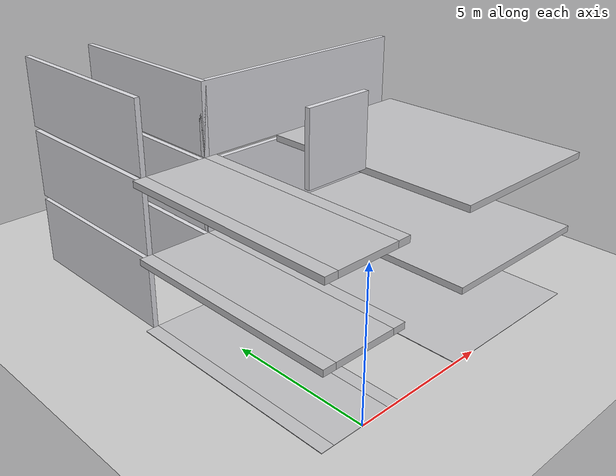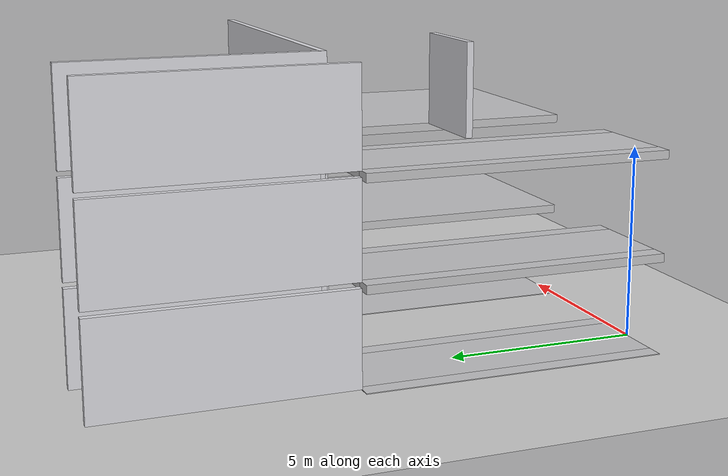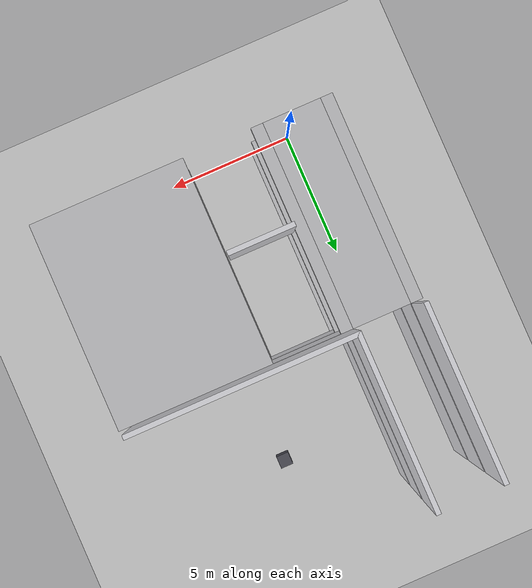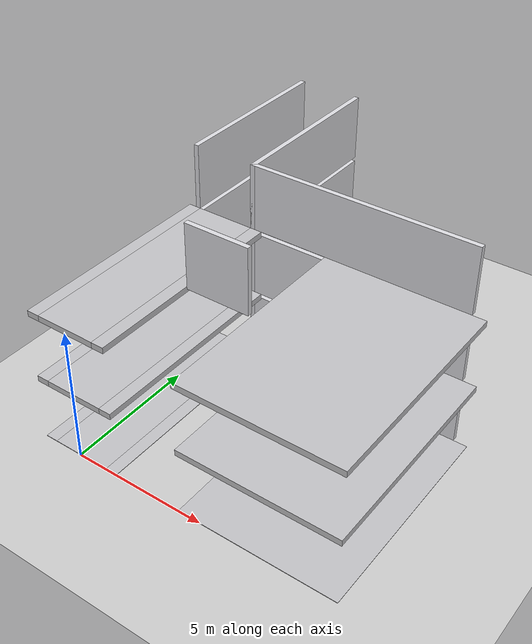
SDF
<sdf version="1.7">
 <world name="generated_world">
  <include><uri>model://sun</uri></include>
  <include><uri>model://ground_plane</uri></include>
  <model name="generated_building">
   <static>true</static>
   <link name="slab_floor_0_2">
    <pose>-1.3300 3.9250 -0.1100 0.0000 0.0000 0.0000</pose>
    <collision name="slab_floor_0_2_collision">
     <geometry><box><size>0.4600 7.8500 0.2200</size></box></geometry>
    </collision>
    <visual name="slab_floor_0_2_visual">
     <geometry><box><size>0.4600 7.8500 0.2200</size></box></geometry>
     <material><ambient>0.76 0.76 0.77 1</ambient><diffuse>0.76 0.76 0.77 1</diffuse></material>
    </visual>
    <gravity>false</gravity>
   </link>
   <link name="slab_floor_0_3">
    <pose>0.0000 3.9250 -0.1100 0.0000 0.0000 0.0000</pose>
    <collision name="slab_floor_0_3_collision">
     <geometry><box><size>2.2000 7.8500 0.2200</size></box></geometry>
    </collision>
    <visual name="slab_floor_0_3_visual">
     <geometry><box><size>2.2000 7.8500 0.2200</size></box></geometry>
     <material><ambient>0.76 0.76 0.77 1</ambient><diffuse>0.76 0.76 0.77 1</diffuse></material>
    </visual>
    <gravity>false</gravity>
   </link>
   <link name="slab_floor_0_4">
    <pose>1.3300 3.9250 -0.1100 0.0000 0.0000 0.0000</pose>
    <collision name="slab_floor_0_4_collision">
     <geometry><box><size>0.4600 7.8500 0.2200</size></box></geometry>
    </collision>
    <visual name="slab_floor_0_4_visual">
     <geometry><box><size>0.4600 7.8500 0.2200</size></box></geometry>
     <material><ambient>0.76 0.76 0.77 1</ambient><diffuse>0.76 0.76 0.77 1</diffuse></material>
    </visual>
    <gravity>false</gravity>
   </link>
   <link name="slab_floor_0_5">
    <pose>7.0700 3.9250 -0.1100 0.0000 0.0000 0.0000</pose>
    <collision name="slab_floor_0_5_collision">
     <geometry><box><size>5.8600 7.8500 0.2200</size></box></geometry>
    </collision>
    <visual name="slab_floor_0_5_visual">
     <geometry><box><size>5.8600 7.8500 0.2200</size></box></geometry>
     <material><ambient>0.76 0.76 0.77 1</ambient><diffuse>0.76 0.76 0.77 1</diffuse></material>
    </visual>
    <gravity>false</gravity>
   </link>
   <link name="floor_0_room_0_corridor_wall_lower">
    <pose>-1.1900 11.0575 1.2250 0.0000 0.0000 0.0000</pose>
    <collision name="floor_0_room_0_corridor_wall_lower_collision">
     <geometry><box><size>0.1800 6.4150 2.4500</size></box></geometry>
    </collision>
    <visual name="floor_0_room_0_corridor_wall_lower_visual">
     <geometry><box><size>0.1800 6.4150 2.4500</size></box></geometry>
     <material><ambient>0.86 0.86 0.88 1</ambient><diffuse>0.86 0.86 0.88 1</diffuse></material>
    </visual>
    <gravity>false</gravity>
   </link>
   <link name="floor_0_room_1_corridor_wall_lower">
    <pose>1.1900 11.0575 1.2250 0.0000 0.0000 0.0000</pose>
    <collision name="floor_0_room_1_corridor_wall_lower_collision">
     <geometry><box><size>0.1800 6.4150 2.4500</size></box></geometry>
    </collision>
    <visual name="floor_0_room_1_corridor_wall_lower_visual">
     <geometry><box><size>0.1800 6.4150 2.4500</size></box></geometry>
     <material><ambient>0.86 0.86 0.88 1</ambient><diffuse>0.86 0.86 0.88 1</diffuse></material>
    </visual>
    <gravity>false</gravity>
   </link>
   <link name="floor_0_room_1_south_wall">
    <pose>5.3000 7.9400 1.2250 0.0000 0.0000 0.0000</pose>
    <collision name="floor_0_room_1_south_wall_collision">
     <geometry><box><size>8.4000 0.1800 2.4500</size></box></geometry>
    </collision>
    <visual name="floor_0_room_1_south_wall_visual">
     <geometry><box><size>8.4000 0.1800 2.4500</size></box></geometry>
     <material><ambient>0.86 0.86 0.88 1</ambient><diffuse>0.86 0.86 0.88 1</diffuse></material>
    </visual>
    <gravity>false</gravity>
   </link>
   <link name="floor_0_room_1_chair_south">
    <pose>5.3000 11.8075 0.2800 0.0000 0.0000 0.0000</pose>
    <collision name="floor_0_room_1_chair_south_collision">
     <geometry><box><size>0.5000 0.5000 0.5500</size></box></geometry>
    </collision>
    <visual name="floor_0_room_1_chair_south_visual">
     <geometry><box><size>0.5000 0.5000 0.5500</size></box></geometry>
     <material><ambient>0.30 0.30 0.34 1</ambient><diffuse>0.30 0.30 0.34 1</diffuse></material>
    </visual>
    <gravity>false</gravity>
   </link>
   <link name="slab_floor_1_2">
    <pose>-1.3300 3.9250 2.4900 0.0000 0.0000 0.0000</pose>
    <collision name="slab_floor_1_2_collision">
     <geometry><box><size>0.4600 7.8500 0.2200</size></box></geometry>
    </collision>
    <visual name="slab_floor_1_2_visual">
     <geometry><box><size>0.4600 7.8500 0.2200</size></box></geometry>
     <material><ambient>0.76 0.76 0.77 1</ambient><diffuse>0.76 0.76 0.77 1</diffuse></material>
    </visual>
    <gravity>false</gravity>
   </link>
   <link name="slab_floor_1_3">
    <pose>0.0000 3.9250 2.4900 0.0000 0.0000 0.0000</pose>
    <collision name="slab_floor_1_3_collision">
     <geometry><box><size>2.2000 7.8500 0.2200</size></box></geometry>
    </collision>
    <visual name="slab_floor_1_3_visual">
     <geometry><box><size>2.2000 7.8500 0.2200</size></box></geometry>
     <material><ambient>0.76 0.76 0.77 1</ambient><diffuse>0.76 0.76 0.77 1</diffuse></material>
    </visual>
    <gravity>false</gravity>
   </link>
   <link name="slab_floor_1_4">
    <pose>1.3300 3.9250 2.4900 0.0000 0.0000 0.0000</pose>
    <collision name="slab_floor_1_4_collision">
     <geometry><box><size>0.4600 7.8500 0.2200</size></box></geometry>
    </collision>
    <visual name="slab_floor_1_4_visual">
     <geometry><box><size>0.4600 7.8500 0.2200</size></box></geometry>
     <material><ambient>0.76 0.76 0.77 1</ambient><diffuse>0.76 0.76 0.77 1</diffuse></material>
    </visual>
    <gravity>false</gravity>
   </link>
   <link name="slab_floor_1_5">
    <pose>7.0700 3.9250 2.4900 0.0000 0.0000 0.0000</pose>
    <collision name="slab_floor_1_5_collision">
     <geometry><box><size>5.8600 7.8500 0.2200</size></box></geometry>
    </collision>
    <visual name="slab_floor_1_5_visual">
     <geometry><box><size>5.8600 7.8500 0.2200</size></box></geometry>
     <material><ambient>0.76 0.76 0.77 1</ambient><diffuse>0.76 0.76 0.77 1</diffuse></material>
    </visual>
    <gravity>false</gravity>
   </link>
   <link name="floor_1_room_0_corridor_wall_lower">
    <pose>-1.1900 11.0575 3.8250 0.0000 0.0000 0.0000</pose>
    <collision name="floor_1_room_0_corridor_wall_lower_collision">
     <geometry><box><size>0.1800 6.4150 2.4500</size></box></geometry>
    </collision>
    <visual name="floor_1_room_0_corridor_wall_lower_visual">
     <geometry><box><size>0.1800 6.4150 2.4500</size></box></geometry>
     <material><ambient>0.86 0.86 0.88 1</ambient><diffuse>0.86 0.86 0.88 1</diffuse></material>
    </visual>
    <gravity>false</gravity>
   </link>
   <link name="floor_1_room_1_corridor_wall_lower">
    <pose>1.1900 11.0575 3.8250 0.0000 0.0000 0.0000</pose>
    <collision name="floor_1_room_1_corridor_wall_lower_collision">
     <geometry><box><size>0.1800 6.4150 2.4500</size></box></geometry>
    </collision>
    <visual name="floor_1_room_1_corridor_wall_lower_visual">
     <geometry><box><size>0.1800 6.4150 2.4500</size></box></geometry>
     <material><ambient>0.86 0.86 0.88 1</ambient><diffuse>0.86 0.86 0.88 1</diffuse></material>
    </visual>
    <gravity>false</gravity>
   </link>
   <link name="floor_1_room_1_south_wall">
    <pose>5.3000 7.9400 3.8250 0.0000 0.0000 0.0000</pose>
    <collision name="floor_1_room_1_south_wall_collision">
     <geometry><box><size>8.4000 0.1800 2.4500</size></box></geometry>
    </collision>
    <visual name="floor_1_room_1_south_wall_visual">
     <geometry><box><size>8.4000 0.1800 2.4500</size></box></geometry>
     <material><ambient>0.86 0.86 0.88 1</ambient><diffuse>0.86 0.86 0.88 1</diffuse></material>
    </visual>
    <gravity>false</gravity>
   </link>
   <link name="slab_floor_2_2">
    <pose>-1.3300 3.9250 5.0900 0.0000 0.0000 0.0000</pose>
    <collision name="slab_floor_2_2_collision">
     <geometry><box><size>0.4600 7.8500 0.2200</size></box></geometry>
    </collision>
    <visual name="slab_floor_2_2_visual">
     <geometry><box><size>0.4600 7.8500 0.2200</size></box></geometry>
     <material><ambient>0.76 0.76 0.77 1</ambient><diffuse>0.76 0.76 0.77 1</diffuse></material>
    </visual>
    <gravity>false</gravity>
   </link>
   <link name="slab_floor_2_3">
    <pose>0.0000 3.9250 5.0900 0.0000 0.0000 0.0000</pose>
    <collision name="slab_floor_2_3_collision">
     <geometry><box><size>2.2000 7.8500 0.2200</size></box></geometry>
    </collision>
    <visual name="slab_floor_2_3_visual">
     <geometry><box><size>2.2000 7.8500 0.2200</size></box></geometry>
     <material><ambient>0.76 0.76 0.77 1</ambient><diffuse>0.76 0.76 0.77 1</diffuse></material>
    </visual>
    <gravity>false</gravity>
   </link>
   <link name="slab_floor_2_4">
    <pose>1.3300 3.9250 5.0900 0.0000 0.0000 0.0000</pose>
    <collision name="slab_floor_2_4_collision">
     <geometry><box><size>0.4600 7.8500 0.2200</size></box></geometry>
    </collision>
    <visual name="slab_floor_2_4_visual">
     <geometry><box><size>0.4600 7.8500 0.2200</size></box></geometry>
     <material><ambient>0.76 0.76 0.77 1</ambient><diffuse>0.76 0.76 0.77 1</diffuse></material>
    </visual>
    <gravity>false</gravity>
   </link>
   <link name="slab_floor_2_5">
    <pose>7.0700 3.9250 5.0900 0.0000 0.0000 0.0000</pose>
    <collision name="slab_floor_2_5_collision">
     <geometry><box><size>5.8600 7.8500 0.2200</size></box></geometry>
    </collision>
    <visual name="slab_floor_2_5_visual">
     <geometry><box><size>5.8600 7.8500 0.2200</size></box></geometry>
     <material><ambient>0.76 0.76 0.77 1</ambient><diffuse>0.76 0.76 0.77 1</diffuse></material>
    </visual>
    <gravity>false</gravity>
   </link>
   <link name="floor_2_room_0_corridor_wall_lower">
    <pose>-1.1900 11.0575 6.4250 0.0000 0.0000 0.0000</pose>
    <collision name="floor_2_room_0_corridor_wall_lower_collision">
     <geometry><box><size>0.1800 6.4150 2.4500</size></box></geometry>
    </collision>
    <visual name="floor_2_room_0_corridor_wall_lower_visual">
     <geometry><box><size>0.1800 6.4150 2.4500</size></box></geometry>
     <material><ambient>0.86 0.86 0.88 1</ambient><diffuse>0.86 0.86 0.88 1</diffuse></material>
    </visual>
    <gravity>false</gravity>
   </link>
   <link name="floor_2_room_1_corridor_wall_lower">
    <pose>1.1900 11.0575 6.4250 0.0000 0.0000 0.0000</pose>
    <collision name="floor_2_room_1_corridor_wall_lower_collision">
     <geometry><box><size>0.1800 6.4150 2.4500</size></box></geometry>
    </collision>
    <visual name="floor_2_room_1_corridor_wall_lower_visual">
     <geometry><box><size>0.1800 6.4150 2.4500</size></box></geometry>
     <material><ambient>0.86 0.86 0.88 1</ambient><diffuse>0.86 0.86 0.88 1</diffuse></material>
    </visual>
    <gravity>false</gravity>
   </link>
   <link name="floor_2_room_1_south_wall">
    <pose>5.3000 7.9400 6.4250 0.0000 0.0000 0.0000</pose>
    <collision name="floor_2_room_1_south_wall_collision">
     <geometry><box><size>8.4000 0.1800 2.4500</size></box></geometry>
    </collision>
    <visual name="floor_2_room_1_south_wall_visual">
     <geometry><box><size>8.4000 0.1800 2.4500</size></box></geometry>
     <material><ambient>0.86 0.86 0.88 1</ambient><diffuse>0.86 0.86 0.88 1</diffuse></material>
    </visual>
    <gravity>false</gravity>
   </link>
   <link name="elevator_core_floor_2_north">
    <pose>2.8500 3.8600 6.4250 0.0000 0.0000 0.0000</pose>
    <collision name="elevator_core_floor_2_north_collision">
     <geometry><box><size>2.4000 0.1800 2.4500</size></box></geometry>
    </collision>
    <visual name="elevator_core_floor_2_north_visual">
     <geometry><box><size>2.4000 0.1800 2.4500</size></box></geometry>
     <material><ambient>0.86 0.86 0.88 1</ambient><diffuse>0.86 0.86 0.88 1</diffuse></material>
    </visual>
    <gravity>false</gravity>
   </link>
  </model>
 </world>
</sdf>
